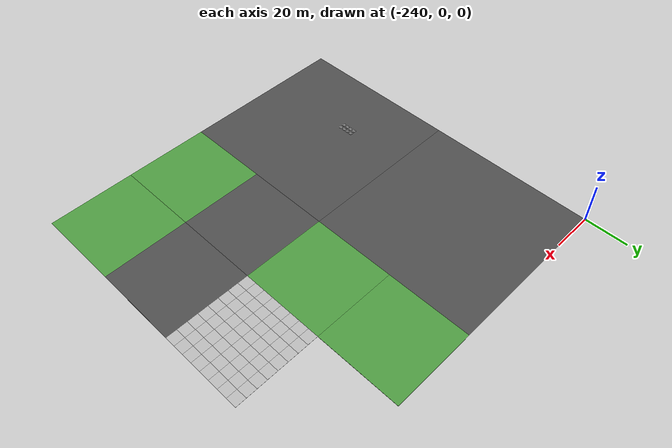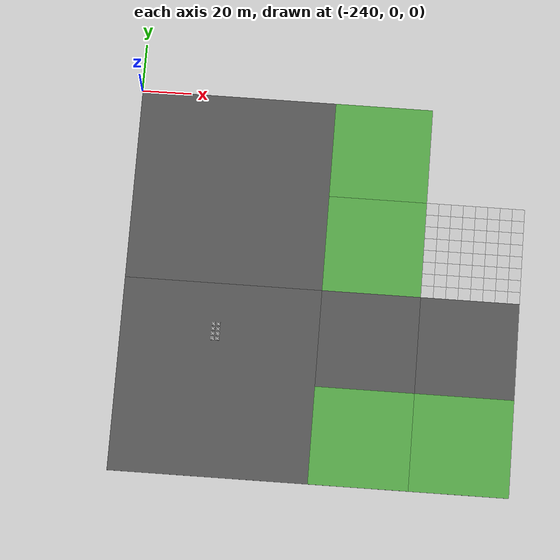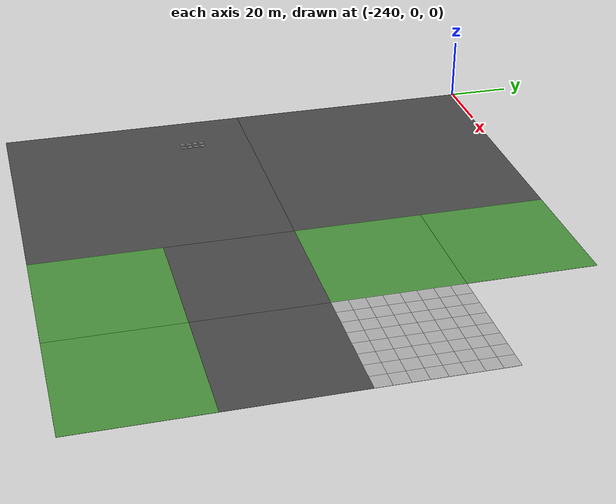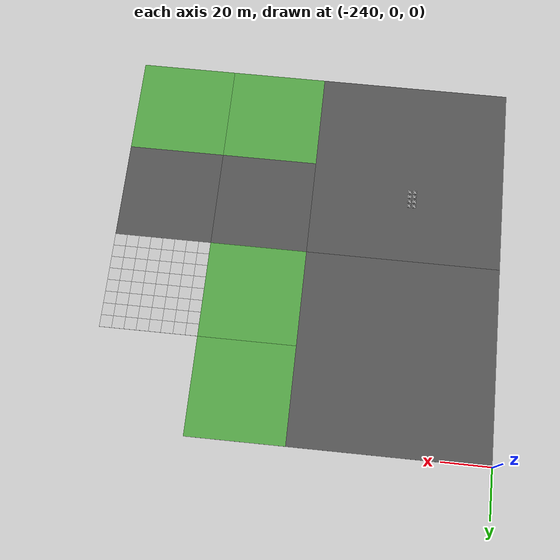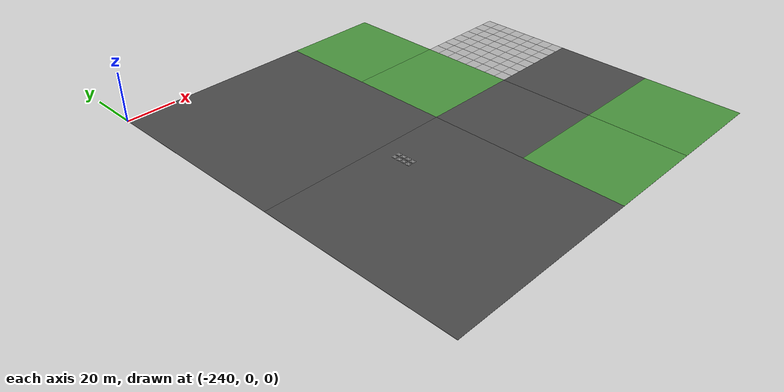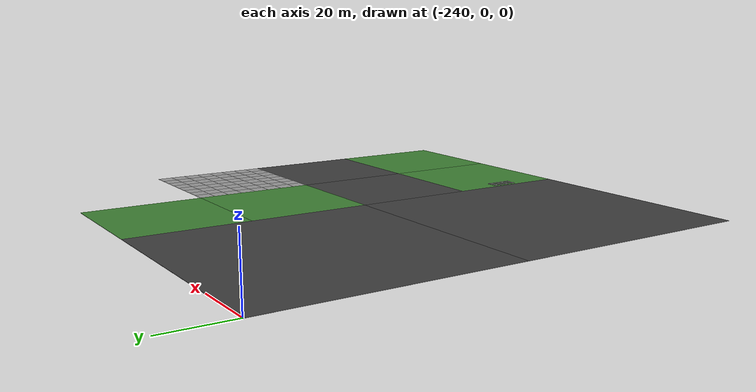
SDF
<sdf version="1.7">
 <world name="default">
  <model name="mud_plane_40x40_7">
   <model name="mud_plane_20x20">
    <model name="mud_plane">
     <static>1</static>
     <link name="link">
      <collision name="collision"><geometry><box><size>10 10 0.1</size></box></geometry></collision>
      <visual name="visual_1">
       <pose>-2.5 2.5 -0.05 0 -0 0</pose>
       <cast_shadows>0</cast_shadows>
       <geometry><box><size>5 5 0.1</size></box></geometry>
       <material>
        <script>
         <uri>model://mud_plane/materials/scripts</uri>
         <uri>model://mud_plane/materials/textures</uri>
         <name>vrc/mud</name>
        </script>
       </material>
      </visual>
      <visual name="visual_2">
       <pose>2.5 2.5 -0.05 0 -0 0</pose>
       <cast_shadows>0</cast_shadows>
       <geometry><box><size>5 5 0.1</size></box></geometry>
       <material>
        <script>
         <uri>model://mud_plane/materials/scripts</uri>
         <uri>model://mud_plane/materials/textures</uri>
         <name>vrc/mud</name>
        </script>
       </material>
      </visual>
      <visual name="visual_3">
       <pose>2.5 -2.5 -0.05 0 -0 0</pose>
       <cast_shadows>0</cast_shadows>
       <geometry><box><size>5 5 0.1</size></box></geometry>
       <material>
        <script>
         <uri>model://mud_plane/materials/scripts</uri>
         <uri>model://mud_plane/materials/textures</uri>
         <name>vrc/mud</name>
        </script>
       </material>
      </visual>
      <visual name="visual_4">
       <pose>-2.5 -2.5 -0.05 0 -0 0</pose>
       <cast_shadows>0</cast_shadows>
       <geometry><box><size>5 5 0.1</size></box></geometry>
       <material>
        <script>
         <uri>model://mud_plane/materials/scripts</uri>
         <uri>model://mud_plane/materials/textures</uri>
         <name>vrc/mud</name>
        </script>
       </material>
      </visual>
     </link>
     <pose>-4.99986 -4.99991 0 0 -0 0</pose>
    </model>
    <model name="mud_plane_0">
     <static>1</static>
     <link name="link">
      <collision name="collision"><geometry><box><size>10 10 0.1</size></box></geometry></collision>
      <visual name="visual_1">
       <pose>-2.5 2.5 -0.05 0 -0 0</pose>
       <cast_shadows>0</cast_shadows>
       <geometry><box><size>5 5 0.1</size></box></geometry>
       <material>
        <script>
         <uri>model://mud_plane/materials/scripts</uri>
         <uri>model://mud_plane/materials/textures</uri>
         <name>vrc/mud</name>
        </script>
       </material>
      </visual>
      <visual name="visual_2">
       <pose>2.5 2.5 -0.05 0 -0 0</pose>
       <cast_shadows>0</cast_shadows>
       <geometry><box><size>5 5 0.1</size></box></geometry>
       <material>
        <script>
         <uri>model://mud_plane/materials/scripts</uri>
         <uri>model://mud_plane/materials/textures</uri>
         <name>vrc/mud</name>
        </script>
       </material>
      </visual>
      <visual name="visual_3">
       <pose>2.5 -2.5 -0.05 0 -0 0</pose>
       <cast_shadows>0</cast_shadows>
       <geometry><box><size>5 5 0.1</size></box></geometry>
       <material>
        <script>
         <uri>model://mud_plane/materials/scripts</uri>
         <uri>model://mud_plane/materials/textures</uri>
         <name>vrc/mud</name>
        </script>
       </material>
      </visual>
      <visual name="visual_4">
       <pose>-2.5 -2.5 -0.05 0 -0 0</pose>
       <cast_shadows>0</cast_shadows>
       <geometry><box><size>5 5 0.1</size></box></geometry>
       <material>
        <script>
         <uri>model://mud_plane/materials/scripts</uri>
         <uri>model://mud_plane/materials/textures</uri>
         <name>vrc/mud</name>
        </script>
       </material>
      </visual>
     </link>
     <pose>-4.99946 4.99954 0 0 -0 0</pose>
    </model>
    <model name="mud_plane_1">
     <static>1</static>
     <link name="link">
      <collision name="collision"><geometry><box><size>10 10 0.1</size></box></geometry></collision>
      <visual name="visual_1">
       <pose>-2.5 2.5 -0.05 0 -0 0</pose>
       <cast_shadows>0</cast_shadows>
       <geometry><box><size>5 5 0.1</size></box></geometry>
       <material>
        <script>
         <uri>model://mud_plane/materials/scripts</uri>
         <uri>model://mud_plane/materials/textures</uri>
         <name>vrc/mud</name>
        </script>
       </material>
      </visual>
      <visual name="visual_2">
       <pose>2.5 2.5 -0.05 0 -0 0</pose>
       <cast_shadows>0</cast_shadows>
       <geometry><box><size>5 5 0.1</size></box></geometry>
       <material>
        <script>
         <uri>model://mud_plane/materials/scripts</uri>
         <uri>model://mud_plane/materials/textures</uri>
         <name>vrc/mud</name>
        </script>
       </material>
      </visual>
      <visual name="visual_3">
       <pose>2.5 -2.5 -0.05 0 -0 0</pose>
       <cast_shadows>0</cast_shadows>
       <geometry><box><size>5 5 0.1</size></box></geometry>
       <material>
        <script>
         <uri>model://mud_plane/materials/scripts</uri>
         <uri>model://mud_plane/materials/textures</uri>
         <name>vrc/mud</name>
        </script>
       </material>
      </visual>
      <visual name="visual_4">
       <pose>-2.5 -2.5 -0.05 0 -0 0</pose>
       <cast_shadows>0</cast_shadows>
       <geometry><box><size>5 5 0.1</size></box></geometry>
       <material>
        <script>
         <uri>model://mud_plane/materials/scripts</uri>
         <uri>model://mud_plane/materials/textures</uri>
         <name>vrc/mud</name>
        </script>
       </material>
      </visual>
     </link>
     <pose>4.99964 -4.99949 0 0 -0 0</pose>
    </model>
    <model name="mud_plane_2">
     <static>1</static>
     <link name="link">
      <collision name="collision"><geometry><box><size>10 10 0.1</size></box></geometry></collision>
      <visual name="visual_1">
       <pose>-2.5 2.5 -0.05 0 -0 0</pose>
       <cast_shadows>0</cast_shadows>
       <geometry><box><size>5 5 0.1</size></box></geometry>
       <material>
        <script>
         <uri>model://mud_plane/materials/scripts</uri>
         <uri>model://mud_plane/materials/textures</uri>
         <name>vrc/mud</name>
        </script>
       </material>
      </visual>
      <visual name="visual_2">
       <pose>2.5 2.5 -0.05 0 -0 0</pose>
       <cast_shadows>0</cast_shadows>
       <geometry><box><size>5 5 0.1</size></box></geometry>
       <material>
        <script>
         <uri>model://mud_plane/materials/scripts</uri>
         <uri>model://mud_plane/materials/textures</uri>
         <name>vrc/mud</name>
        </script>
       </material>
      </visual>
      <visual name="visual_3">
       <pose>2.5 -2.5 -0.05 0 -0 0</pose>
       <cast_shadows>0</cast_shadows>
       <geometry><box><size>5 5 0.1</size></box></geometry>
       <material>
        <script>
         <uri>model://mud_plane/materials/scripts</uri>
         <uri>model://mud_plane/materials/textures</uri>
         <name>vrc/mud</name>
        </script>
       </material>
      </visual>
      <visual name="visual_4">
       <pose>-2.5 -2.5 -0.05 0 -0 0</pose>
       <cast_shadows>0</cast_shadows>
       <geometry><box><size>5 5 0.1</size></box></geometry>
       <material>
        <script>
         <uri>model://mud_plane/materials/scripts</uri>
         <uri>model://mud_plane/materials/textures</uri>
         <name>vrc/mud</name>
        </script>
       </material>
      </visual>
     </link>
     <pose>4.99967 4.99986 0 0 -0 0</pose>
    </model>
    <static>0</static>
    <pose>-9.99895 9.99843 0 0 -0 0</pose>
   </model>
   <model name="mud_plane_20x20_0">
    <model name="mud_plane">
     <static>1</static>
     <link name="link">
      <collision name="collision"><geometry><box><size>10 10 0.1</size></box></geometry></collision>
      <visual name="visual_1">
       <pose>-2.5 2.5 -0.05 0 -0 0</pose>
       <cast_shadows>0</cast_shadows>
       <geometry><box><size>5 5 0.1</size></box></geometry>
       <material>
        <script>
         <uri>model://mud_plane/materials/scripts</uri>
         <uri>model://mud_plane/materials/textures</uri>
         <name>vrc/mud</name>
        </script>
       </material>
      </visual>
      <visual name="visual_2">
       <pose>2.5 2.5 -0.05 0 -0 0</pose>
       <cast_shadows>0</cast_shadows>
       <geometry><box><size>5 5 0.1</size></box></geometry>
       <material>
        <script>
         <uri>model://mud_plane/materials/scripts</uri>
         <uri>model://mud_plane/materials/textures</uri>
         <name>vrc/mud</name>
        </script>
       </material>
      </visual>
      <visual name="visual_3">
       <pose>2.5 -2.5 -0.05 0 -0 0</pose>
       <cast_shadows>0</cast_shadows>
       <geometry><box><size>5 5 0.1</size></box></geometry>
       <material>
        <script>
         <uri>model://mud_plane/materials/scripts</uri>
         <uri>model://mud_plane/materials/textures</uri>
         <name>vrc/mud</name>
        </script>
       </material>
      </visual>
      <visual name="visual_4">
       <pose>-2.5 -2.5 -0.05 0 -0 0</pose>
       <cast_shadows>0</cast_shadows>
       <geometry><box><size>5 5 0.1</size></box></geometry>
       <material>
        <script>
         <uri>model://mud_plane/materials/scripts</uri>
         <uri>model://mud_plane/materials/textures</uri>
         <name>vrc/mud</name>
        </script>
       </material>
      </visual>
     </link>
     <pose>-4.99986 -4.99991 0 0 -0 0</pose>
    </model>
    <model name="mud_plane_0">
     <static>1</static>
     <link name="link">
      <collision name="collision"><geometry><box><size>10 10 0.1</size></box></geometry></collision>
      <visual name="visual_1">
       <pose>-2.5 2.5 -0.05 0 -0 0</pose>
       <cast_shadows>0</cast_shadows>
       <geometry><box><size>5 5 0.1</size></box></geometry>
       <material>
        <script>
         <uri>model://mud_plane/materials/scripts</uri>
         <uri>model://mud_plane/materials/textures</uri>
         <name>vrc/mud</name>
        </script>
       </material>
      </visual>
      <visual name="visual_2">
       <pose>2.5 2.5 -0.05 0 -0 0</pose>
       <cast_shadows>0</cast_shadows>
       <geometry><box><size>5 5 0.1</size></box></geometry>
       <material>
        <script>
         <uri>model://mud_plane/materials/scripts</uri>
         <uri>model://mud_plane/materials/textures</uri>
         <name>vrc/mud</name>
        </script>
       </material>
      </visual>
      <visual name="visual_3">
       <pose>2.5 -2.5 -0.05 0 -0 0</pose>
       <cast_shadows>0</cast_shadows>
       <geometry><box><size>5 5 0.1</size></box></geometry>
       <material>
        <script>
         <uri>model://mud_plane/materials/scripts</uri>
         <uri>model://mud_plane/materials/textures</uri>
         <name>vrc/mud</name>
        </script>
       </material>
      </visual>
      <visual name="visual_4">
       <pose>-2.5 -2.5 -0.05 0 -0 0</pose>
       <cast_shadows>0</cast_shadows>
       <geometry><box><size>5 5 0.1</size></box></geometry>
       <material>
        <script>
         <uri>model://mud_plane/materials/scripts</uri>
         <uri>model://mud_plane/materials/textures</uri>
         <name>vrc/mud</name>
        </script>
       </material>
      </visual>
     </link>
     <pose>-4.99946 4.99954 0 0 -0 0</pose>
    </model>
    <model name="mud_plane_1">
     <static>1</static>
     <link name="link">
      <collision name="collision"><geometry><box><size>10 10 0.1</size></box></geometry></collision>
      <visual name="visual_1">
       <pose>-2.5 2.5 -0.05 0 -0 0</pose>
       <cast_shadows>0</cast_shadows>
       <geometry><box><size>5 5 0.1</size></box></geometry>
       <material>
        <script>
         <uri>model://mud_plane/materials/scripts</uri>
         <uri>model://mud_plane/materials/textures</uri>
         <name>vrc/mud</name>
        </script>
       </material>
      </visual>
      <visual name="visual_2">
       <pose>2.5 2.5 -0.05 0 -0 0</pose>
       <cast_shadows>0</cast_shadows>
       <geometry><box><size>5 5 0.1</size></box></geometry>
       <material>
        <script>
         <uri>model://mud_plane/materials/scripts</uri>
         <uri>model://mud_plane/materials/textures</uri>
         <name>vrc/mud</name>
        </script>
       </material>
      </visual>
      <visual name="visual_3">
       <pose>2.5 -2.5 -0.05 0 -0 0</pose>
       <cast_shadows>0</cast_shadows>
       <geometry><box><size>5 5 0.1</size></box></geometry>
       <material>
        <script>
         <uri>model://mud_plane/materials/scripts</uri>
         <uri>model://mud_plane/materials/textures</uri>
         <name>vrc/mud</name>
        </script>
       </material>
      </visual>
      <visual name="visual_4">
       <pose>-2.5 -2.5 -0.05 0 -0 0</pose>
       <cast_shadows>0</cast_shadows>
       <geometry><box><size>5 5 0.1</size></box></geometry>
       <material>
        <script>
         <uri>model://mud_plane/materials/scripts</uri>
         <uri>model://mud_plane/materials/textures</uri>
         <name>vrc/mud</name>
        </script>
       </material>
      </visual>
     </link>
     <pose>4.99964 -4.99949 0 0 -0 0</pose>
    </model>
    <model name="mud_plane_2">
     <static>1</static>
     <link name="link">
      <collision name="collision"><geometry><box><size>10 10 0.1</size></box></geometry></collision>
      <visual name="visual_1">
       <pose>-2.5 2.5 -0.05 0 -0 0</pose>
       <cast_shadows>0</cast_shadows>
       <geometry><box><size>5 5 0.1</size></box></geometry>
       <material>
        <script>
         <uri>model://mud_plane/materials/scripts</uri>
         <uri>model://mud_plane/materials/textures</uri>
         <name>vrc/mud</name>
        </script>
       </material>
      </visual>
      <visual name="visual_2">
       <pose>2.5 2.5 -0.05 0 -0 0</pose>
       <cast_shadows>0</cast_shadows>
       <geometry><box><size>5 5 0.1</size></box></geometry>
       <material>
        <script>
         <uri>model://mud_plane/materials/scripts</uri>
         <uri>model://mud_plane/materials/textures</uri>
         <name>vrc/mud</name>
        </script>
       </material>
      </visual>
      <visual name="visual_3">
       <pose>2.5 -2.5 -0.05 0 -0 0</pose>
       <cast_shadows>0</cast_shadows>
       <geometry><box><size>5 5 0.1</size></box></geometry>
       <material>
        <script>
         <uri>model://mud_plane/materials/scripts</uri>
         <uri>model://mud_plane/materials/textures</uri>
         <name>vrc/mud</name>
        </script>
       </material>
      </visual>
      <visual name="visual_4">
       <pose>-2.5 -2.5 -0.05 0 -0 0</pose>
       <cast_shadows>0</cast_shadows>
       <geometry><box><size>5 5 0.1</size></box></geometry>
       <material>
        <script>
         <uri>model://mud_plane/materials/scripts</uri>
         <uri>model://mud_plane/materials/textures</uri>
         <name>vrc/mud</name>
        </script>
       </material>
      </visual>
     </link>
     <pose>4.99967 4.99986 0 0 -0 0</pose>
    </model>
    <static>0</static>
    <pose>9.99933 9.9997 0 0 -0 0</pose>
   </model>
   <model name="mud_plane_20x20_1">
    <model name="mud_plane">
     <static>1</static>
     <link name="link">
      <collision name="collision"><geometry><box><size>10 10 0.1</size></box></geometry></collision>
      <visual name="visual_1">
       <pose>-2.5 2.5 -0.05 0 -0 0</pose>
       <cast_shadows>0</cast_shadows>
       <geometry><box><size>5 5 0.1</size></box></geometry>
       <material>
        <script>
         <uri>model://mud_plane/materials/scripts</uri>
         <uri>model://mud_plane/materials/textures</uri>
         <name>vrc/mud</name>
        </script>
       </material>
      </visual>
      <visual name="visual_2">
       <pose>2.5 2.5 -0.05 0 -0 0</pose>
       <cast_shadows>0</cast_shadows>
       <geometry><box><size>5 5 0.1</size></box></geometry>
       <material>
        <script>
         <uri>model://mud_plane/materials/scripts</uri>
         <uri>model://mud_plane/materials/textures</uri>
         <name>vrc/mud</name>
        </script>
       </material>
      </visual>
      <visual name="visual_3">
       <pose>2.5 -2.5 -0.05 0 -0 0</pose>
       <cast_shadows>0</cast_shadows>
       <geometry><box><size>5 5 0.1</size></box></geometry>
       <material>
        <script>
         <uri>model://mud_plane/materials/scripts</uri>
         <uri>model://mud_plane/materials/textures</uri>
         <name>vrc/mud</name>
        </script>
       </material>
      </visual>
      <visual name="visual_4">
       <pose>-2.5 -2.5 -0.05 0 -0 0</pose>
       <cast_shadows>0</cast_shadows>
       <geometry><box><size>5 5 0.1</size></box></geometry>
       <material>
        <script>
         <uri>model://mud_plane/materials/scripts</uri>
         <uri>model://mud_plane/materials/textures</uri>
         <name>vrc/mud</name>
        </script>
       </material>
      </visual>
     </link>
     <pose>-4.99986 -4.99991 0 0 -0 0</pose>
    </model>
    <model name="mud_plane_0">
     <static>1</static>
     <link name="link">
      <collision name="collision"><geometry><box><size>10 10 0.1</size></box></geometry></collision>
      <visual name="visual_1">
       <pose>-2.5 2.5 -0.05 0 -0 0</pose>
       <cast_shadows>0</cast_shadows>
       <geometry><box><size>5 5 0.1</size></box></geometry>
       <material>
        <script>
         <uri>model://mud_plane/materials/scripts</uri>
         <uri>model://mud_plane/materials/textures</uri>
         <name>vrc/mud</name>
        </script>
       </material>
      </visual>
      <visual name="visual_2">
       <pose>2.5 2.5 -0.05 0 -0 0</pose>
       <cast_shadows>0</cast_shadows>
       <geometry><box><size>5 5 0.1</size></box></geometry>
       <material>
        <script>
         <uri>model://mud_plane/materials/scripts</uri>
         <uri>model://mud_plane/materials/textures</uri>
         <name>vrc/mud</name>
        </script>
       </material>
      </visual>
      <visual name="visual_3">
       <pose>2.5 -2.5 -0.05 0 -0 0</pose>
       <cast_shadows>0</cast_shadows>
       <geometry><box><size>5 5 0.1</size></box></geometry>
       <material>
        <script>
         <uri>model://mud_plane/materials/scripts</uri>
         <uri>model://mud_plane/materials/textures</uri>
         <name>vrc/mud</name>
        </script>
       </material>
      </visual>
      <visual name="visual_4">
       <pose>-2.5 -2.5 -0.05 0 -0 0</pose>
       <cast_shadows>0</cast_shadows>
       <geometry><box><size>5 5 0.1</size></box></geometry>
       <material>
        <script>
         <uri>model://mud_plane/materials/scripts</uri>
         <uri>model://mud_plane/materials/textures</uri>
         <name>vrc/mud</name>
        </script>
       </material>
      </visual>
     </link>
     <pose>-4.99946 4.99954 0 0 -0 0</pose>
    </model>
    <model name="mud_plane_1">
     <static>1</static>
     <link name="link">
      <collision name="collision"><geometry><box><size>10 10 0.1</size></box></geometry></collision>
      <visual name="visual_1">
       <pose>-2.5 2.5 -0.05 0 -0 0</pose>
       <cast_shadows>0</cast_shadows>
       <geometry><box><size>5 5 0.1</size></box></geometry>
       <material>
        <script>
         <uri>model://mud_plane/materials/scripts</uri>
         <uri>model://mud_plane/materials/textures</uri>
         <name>vrc/mud</name>
        </script>
       </material>
      </visual>
      <visual name="visual_2">
       <pose>2.5 2.5 -0.05 0 -0 0</pose>
       <cast_shadows>0</cast_shadows>
       <geometry><box><size>5 5 0.1</size></box></geometry>
       <material>
        <script>
         <uri>model://mud_plane/materials/scripts</uri>
         <uri>model://mud_plane/materials/textures</uri>
         <name>vrc/mud</name>
        </script>
       </material>
      </visual>
      <visual name="visual_3">
       <pose>2.5 -2.5 -0.05 0 -0 0</pose>
       <cast_shadows>0</cast_shadows>
       <geometry><box><size>5 5 0.1</size></box></geometry>
       <material>
        <script>
         <uri>model://mud_plane/materials/scripts</uri>
         <uri>model://mud_plane/materials/textures</uri>
         <name>vrc/mud</name>
        </script>
       </material>
      </visual>
      <visual name="visual_4">
       <pose>-2.5 -2.5 -0.05 0 -0 0</pose>
       <cast_shadows>0</cast_shadows>
       <geometry><box><size>5 5 0.1</size></box></geometry>
       <material>
        <script>
         <uri>model://mud_plane/materials/scripts</uri>
         <uri>model://mud_plane/materials/textures</uri>
         <name>vrc/mud</name>
        </script>
       </material>
      </visual>
     </link>
     <pose>4.99964 -4.99949 0 0 -0 0</pose>
    </model>
    <model name="mud_plane_2">
     <static>1</static>
     <link name="link">
      <collision name="collision"><geometry><box><size>10 10 0.1</size></box></geometry></collision>
      <visual name="visual_1">
       <pose>-2.5 2.5 -0.05 0 -0 0</pose>
       <cast_shadows>0</cast_shadows>
       <geometry><box><size>5 5 0.1</size></box></geometry>
       <material>
        <script>
         <uri>model://mud_plane/materials/scripts</uri>
         <uri>model://mud_plane/materials/textures</uri>
         <name>vrc/mud</name>
        </script>
       </material>
      </visual>
      <visual name="visual_2">
       <pose>2.5 2.5 -0.05 0 -0 0</pose>
       <cast_shadows>0</cast_shadows>
       <geometry><box><size>5 5 0.1</size></box></geometry>
       <material>
        <script>
         <uri>model://mud_plane/materials/scripts</uri>
         <uri>model://mud_plane/materials/textures</uri>
         <name>vrc/mud</name>
        </script>
       </material>
      </visual>
      <visual name="visual_3">
       <pose>2.5 -2.5 -0.05 0 -0 0</pose>
       <cast_shadows>0</cast_shadows>
       <geometry><box><size>5 5 0.1</size></box></geometry>
       <material>
        <script>
         <uri>model://mud_plane/materials/scripts</uri>
         <uri>model://mud_plane/materials/textures</uri>
         <name>vrc/mud</name>
        </script>
       </material>
      </visual>
      <visual name="visual_4">
       <pose>-2.5 -2.5 -0.05 0 -0 0</pose>
       <cast_shadows>0</cast_shadows>
       <geometry><box><size>5 5 0.1</size></box></geometry>
       <material>
        <script>
         <uri>model://mud_plane/materials/scripts</uri>
         <uri>model://mud_plane/materials/textures</uri>
         <name>vrc/mud</name>
        </script>
       </material>
      </visual>
     </link>
     <pose>4.99967 4.99986 0 0 -0 0</pose>
    </model>
    <static>0</static>
    <pose>9.9993 -9.99877 0 0 -0 0</pose>
   </model>
   <model name="mud_plane_20x20_2">
    <model name="mud_plane">
     <static>1</static>
     <link name="link">
      <collision name="collision"><geometry><box><size>10 10 0.1</size></box></geometry></collision>
      <visual name="visual_1">
       <pose>-2.5 2.5 -0.05 0 -0 0</pose>
       <cast_shadows>0</cast_shadows>
       <geometry><box><size>5 5 0.1</size></box></geometry>
       <material>
        <script>
         <uri>model://mud_plane/materials/scripts</uri>
         <uri>model://mud_plane/materials/textures</uri>
         <name>vrc/mud</name>
        </script>
       </material>
      </visual>
      <visual name="visual_2">
       <pose>2.5 2.5 -0.05 0 -0 0</pose>
       <cast_shadows>0</cast_shadows>
       <geometry><box><size>5 5 0.1</size></box></geometry>
       <material>
        <script>
         <uri>model://mud_plane/materials/scripts</uri>
         <uri>model://mud_plane/materials/textures</uri>
         <name>vrc/mud</name>
        </script>
       </material>
      </visual>
      <visual name="visual_3">
       <pose>2.5 -2.5 -0.05 0 -0 0</pose>
       <cast_shadows>0</cast_shadows>
       <geometry><box><size>5 5 0.1</size></box></geometry>
       <material>
        <script>
         <uri>model://mud_plane/materials/scripts</uri>
         <uri>model://mud_plane/materials/textures</uri>
         <name>vrc/mud</name>
        </script>
       </material>
      </visual>
      <visual name="visual_4">
       <pose>-2.5 -2.5 -0.05 0 -0 0</pose>
       <cast_shadows>0</cast_shadows>
       <geometry><box><size>5 5 0.1</size></box></geometry>
       <material>
        <script>
         <uri>model://mud_plane/materials/scripts</uri>
         <uri>model://mud_plane/materials/textures</uri>
         <name>vrc/mud</name>
        </script>
       </material>
      </visual>
     </link>
     <pose>-4.99986 -4.99991 0 0 -0 0</pose>
    </model>
    <model name="mud_plane_0">
     <static>1</static>
     <link name="link">
      <collision name="collision"><geometry><box><size>10 10 0.1</size></box></geometry></collision>
      <visual name="visual_1">
       <pose>-2.5 2.5 -0.05 0 -0 0</pose>
       <cast_shadows>0</cast_shadows>
       <geometry><box><size>5 5 0.1</size></box></geometry>
       <material>
        <script>
         <uri>model://mud_plane/materials/scripts</uri>
         <uri>model://mud_plane/materials/textures</uri>
         <name>vrc/mud</name>
        </script>
       </material>
      </visual>
      <visual name="visual_2">
       <pose>2.5 2.5 -0.05 0 -0 0</pose>
       <cast_shadows>0</cast_shadows>
       <geometry><box><size>5 5 0.1</size></box></geometry>
       <material>
        <script>
         <uri>model://mud_plane/materials/scripts</uri>
         <uri>model://mud_plane/materials/textures</uri>
         <name>vrc/mud</name>
        </script>
       </material>
      </visual>
      <visual name="visual_3">
       <pose>2.5 -2.5 -0.05 0 -0 0</pose>
       <cast_shadows>0</cast_shadows>
       <geometry><box><size>5 5 0.1</size></box></geometry>
       <material>
        <script>
         <uri>model://mud_plane/materials/scripts</uri>
         <uri>model://mud_plane/materials/textures</uri>
         <name>vrc/mud</name>
        </script>
       </material>
      </visual>
      <visual name="visual_4">
       <pose>-2.5 -2.5 -0.05 0 -0 0</pose>
       <cast_shadows>0</cast_shadows>
       <geometry><box><size>5 5 0.1</size></box></geometry>
       <material>
        <script>
         <uri>model://mud_plane/materials/scripts</uri>
         <uri>model://mud_plane/materials/textures</uri>
         <name>vrc/mud</name>
        </script>
       </material>
      </visual>
     </link>
     <pose>-4.99946 4.99954 0 0 -0 0</pose>
    </model>
    <model name="mud_plane_1">
     <static>1</static>
     <link name="link">
      <collision name="collision"><geometry><box><size>10 10 0.1</size></box></geometry></collision>
      <visual name="visual_1">
       <pose>-2.5 2.5 -0.05 0 -0 0</pose>
       <cast_shadows>0</cast_shadows>
       <geometry><box><size>5 5 0.1</size></box></geometry>
       <material>
        <script>
         <uri>model://mud_plane/materials/scripts</uri>
         <uri>model://mud_plane/materials/textures</uri>
         <name>vrc/mud</name>
        </script>
       </material>
      </visual>
      <visual name="visual_2">
       <pose>2.5 2.5 -0.05 0 -0 0</pose>
       <cast_shadows>0</cast_shadows>
       <geometry><box><size>5 5 0.1</size></box></geometry>
       <material>
        <script>
         <uri>model://mud_plane/materials/scripts</uri>
         <uri>model://mud_plane/materials/textures</uri>
         <name>vrc/mud</name>
        </script>
       </material>
      </visual>
      <visual name="visual_3">
       <pose>2.5 -2.5 -0.05 0 -0 0</pose>
       <cast_shadows>0</cast_shadows>
       <geometry><box><size>5 5 0.1</size></box></geometry>
       <material>
        <script>
         <uri>model://mud_plane/materials/scripts</uri>
         <uri>model://mud_plane/materials/textures</uri>
         <name>vrc/mud</name>
        </script>
       </material>
      </visual>
      <visual name="visual_4">
       <pose>-2.5 -2.5 -0.05 0 -0 0</pose>
       <cast_shadows>0</cast_shadows>
       <geometry><box><size>5 5 0.1</size></box></geometry>
       <material>
        <script>
         <uri>model://mud_plane/materials/scripts</uri>
         <uri>model://mud_plane/materials/textures</uri>
         <name>vrc/mud</name>
        </script>
       </material>
      </visual>
     </link>
     <pose>4.99964 -4.99949 0 0 -0 0</pose>
    </model>
    <model name="mud_plane_2">
     <static>1</static>
     <link name="link">
      <collision name="collision"><geometry><box><size>10 10 0.1</size></box></geometry></collision>
      <visual name="visual_1">
       <pose>-2.5 2.5 -0.05 0 -0 0</pose>
       <cast_shadows>0</cast_shadows>
       <geometry><box><size>5 5 0.1</size></box></geometry>
       <material>
        <script>
         <uri>model://mud_plane/materials/scripts</uri>
         <uri>model://mud_plane/materials/textures</uri>
         <name>vrc/mud</name>
        </script>
       </material>
      </visual>
      <visual name="visual_2">
       <pose>2.5 2.5 -0.05 0 -0 0</pose>
       <cast_shadows>0</cast_shadows>
       <geometry><box><size>5 5 0.1</size></box></geometry>
       <material>
        <script>
         <uri>model://mud_plane/materials/scripts</uri>
         <uri>model://mud_plane/materials/textures</uri>
         <name>vrc/mud</name>
        </script>
       </material>
      </visual>
      <visual name="visual_3">
       <pose>2.5 -2.5 -0.05 0 -0 0</pose>
       <cast_shadows>0</cast_shadows>
       <geometry><box><size>5 5 0.1</size></box></geometry>
       <material>
        <script>
         <uri>model://mud_plane/materials/scripts</uri>
         <uri>model://mud_plane/materials/textures</uri>
         <name>vrc/mud</name>
        </script>
       </material>
      </visual>
      <visual name="visual_4">
       <pose>-2.5 -2.5 -0.05 0 -0 0</pose>
       <cast_shadows>0</cast_shadows>
       <geometry><box><size>5 5 0.1</size></box></geometry>
       <material>
        <script>
         <uri>model://mud_plane/materials/scripts</uri>
         <uri>model://mud_plane/materials/textures</uri>
         <name>vrc/mud</name>
        </script>
       </material>
      </visual>
     </link>
     <pose>4.99967 4.99986 0 0 -0 0</pose>
    </model>
    <static>0</static>
    <pose>-9.99969 -9.99935 0 0 -0 0</pose>
   </model>
   <static>0</static>
   <pose>-100 -60 0 0 -0 0</pose>
  </model>
  <model name="grass_plane_40x40_8">
   <pose>-140 -140 -0.05 0 -0 0</pose>
   <static>1</static>
   <link name="link">
    <collision name="collision"><geometry><box><size>40 40 0.1</size></box></geometry></collision>
    <visual name="grass">
     <cast_shadows>0</cast_shadows>
     <geometry><box><size>40 40 0.1</size></box></geometry>
     <material>
      <script><uri>file://media/materials/scripts/gazebo.material</uri><name>Gazebo/Grass</name></script>
     </material>
    </visual>
   </link>
  </model>
  <model name="grass_plane_40x40_9">
   <pose>-100 -140 -0.05 0 -0 0</pose>
   <static>1</static>
   <link name="link">
    <collision name="collision"><geometry><box><size>40 40 0.1</size></box></geometry></collision>
    <visual name="grass">
     <cast_shadows>0</cast_shadows>
     <geometry><box><size>40 40 0.1</size></box></geometry>
     <material>
      <script><uri>file://media/materials/scripts/gazebo.material</uri><name>Gazebo/Grass</name></script>
     </material>
    </visual>
   </link>
  </model>
  <model name="grass_plane_40x40_12">
   <pose>-140 -60 -0.05 0 -0 0</pose>
   <static>1</static>
   <link name="link">
    <collision name="collision"><geometry><box><size>40 40 0.1</size></box></geometry></collision>
    <visual name="grass">
     <cast_shadows>0</cast_shadows>
     <geometry><box><size>40 40 0.1</size></box></geometry>
     <material>
      <script><uri>file://media/materials/scripts/gazebo.material</uri><name>Gazebo/Grass</name></script>
     </material>
    </visual>
   </link>
  </model>
  <model name="grass_plane_40x40_13">
   <pose>-140 -20 -0.05 0 -0 0</pose>
   <static>1</static>
   <link name="link">
    <collision name="collision"><geometry><box><size>40 40 0.1</size></box></geometry></collision>
    <visual name="grass">
     <cast_shadows>0</cast_shadows>
     <geometry><box><size>40 40 0.1</size></box></geometry>
     <material>
      <script><uri>file://media/materials/scripts/gazebo.material</uri><name>Gazebo/Grass</name></script>
     </material>
    </visual>
   </link>
  </model>
  <model name="asphalt_plane_40x40">
   <pose>-200 -40 -0.05 0 -0 0</pose>
   <static>1</static>
   <link name="link">
    <collision name="collision"><geometry><box><size>80 80 0.1</size></box></geometry></collision>
    <visual name="visual">
     <cast_shadows>0</cast_shadows>
     <geometry><box><size>80 80 0.1</size></box></geometry>
     <material>
      <script>
       <uri>model://asphalt_plane_40x40/materials/scripts</uri>
       <uri>model://asphalt_plane_40x40/materials/textures</uri>
       <name>vrc/asphalt</name>
      </script>
     </material>
    </visual>
   </link>
  </model>
  <model name="asphalt_plane_40x40_0">
   <pose>-200 -120 -0.05 0 -0 0</pose>
   <static>1</static>
   <link name="link">
    <collision name="collision"><geometry><box><size>80 80 0.1</size></box></geometry></collision>
    <visual name="visual">
     <cast_shadows>0</cast_shadows>
     <geometry><box><size>80 80 0.1</size></box></geometry>
     <material>
      <script>
       <uri>model://asphalt_plane_40x40/materials/scripts</uri>
       <uri>model://asphalt_plane_40x40/materials/textures</uri>
       <name>vrc/asphalt</name>
      </script>
     </material>
    </visual>
   </link>
  </model>
  <model name="asphalt_plane_40x40_1">
   <pose>-140 -100 -0.05 0 -0 0</pose>
   <static>1</static>
   <link name="link">
    <collision name="collision"><geometry><box><size>40 40 0.1</size></box></geometry></collision>
    <visual name="visual">
     <cast_shadows>0</cast_shadows>
     <geometry><box><size>40 40 0.1</size></box></geometry>
     <material>
      <script>
       <uri>model://asphalt_plane_40x40/materials/scripts</uri>
       <uri>model://asphalt_plane_40x40/materials/textures</uri>
       <name>vrc/asphalt</name>
      </script>
     </material>
    </visual>
   </link>
  </model>
  <model name="asphalt_plane_40x40_2">
   <pose>-100 -100 -0.05 0 -0 0</pose>
   <static>1</static>
   <link name="link">
    <collision name="collision"><geometry><box><size>40 40 0.1</size></box></geometry></collision>
    <visual name="visual">
     <cast_shadows>0</cast_shadows>
     <geometry><box><size>40 40 0.1</size></box></geometry>
     <material>
      <script>
       <uri>model://asphalt_plane_40x40/materials/scripts</uri>
       <uri>model://asphalt_plane_40x40/materials/textures</uri>
       <name>vrc/asphalt</name>
      </script>
     </material>
    </visual>
   </link>
  </model>
  <model name="drone_station_0">
   <include><uri>model://drone_station</uri></include>
   <static>1</static>
   <pose>-200 -100 11.4 0 -0 0</pose>
  </model>
  <model name="drone_station_1">
   <include><uri>model://drone_station</uri></include>
   <static>1</static>
   <pose>-200 -102 11.4 0 -0 0</pose>
  </model>
  <model name="drone_station_2">
   <include><uri>model://drone_station</uri></include>
   <static>1</static>
   <pose>-200 -104 11.4 0 -0 0</pose>
  </model>
  <model name="drone_station_3">
   <include><uri>model://drone_station</uri></include>
   <static>1</static>
   <pose>-200 -106 11.4 0 -0 0</pose>
  </model>
  <model name="drone_station_4">
   <include><uri>model://drone_station</uri></include>
   <static>1</static>
   <pose>-202 -100 11.4 0 -0 0</pose>
  </model>
  <model name="drone_station_5">
   <include><uri>model://drone_station</uri></include>
   <static>1</static>
   <pose>-202 -102 11.4 0 -0 0</pose>
  </model>
  <model name="drone_station_6">
   <include><uri>model://drone_station</uri></include>
   <static>1</static>
   <pose>-202 -104 11.4 0 -0 0</pose>
  </model>
  <model name="drone_station_7">
   <include><uri>model://drone_station</uri></include>
   <static>1</static>
   <pose>-202 -106 11.4 0 -0 0</pose>
  </model>
 </world>
</sdf>
